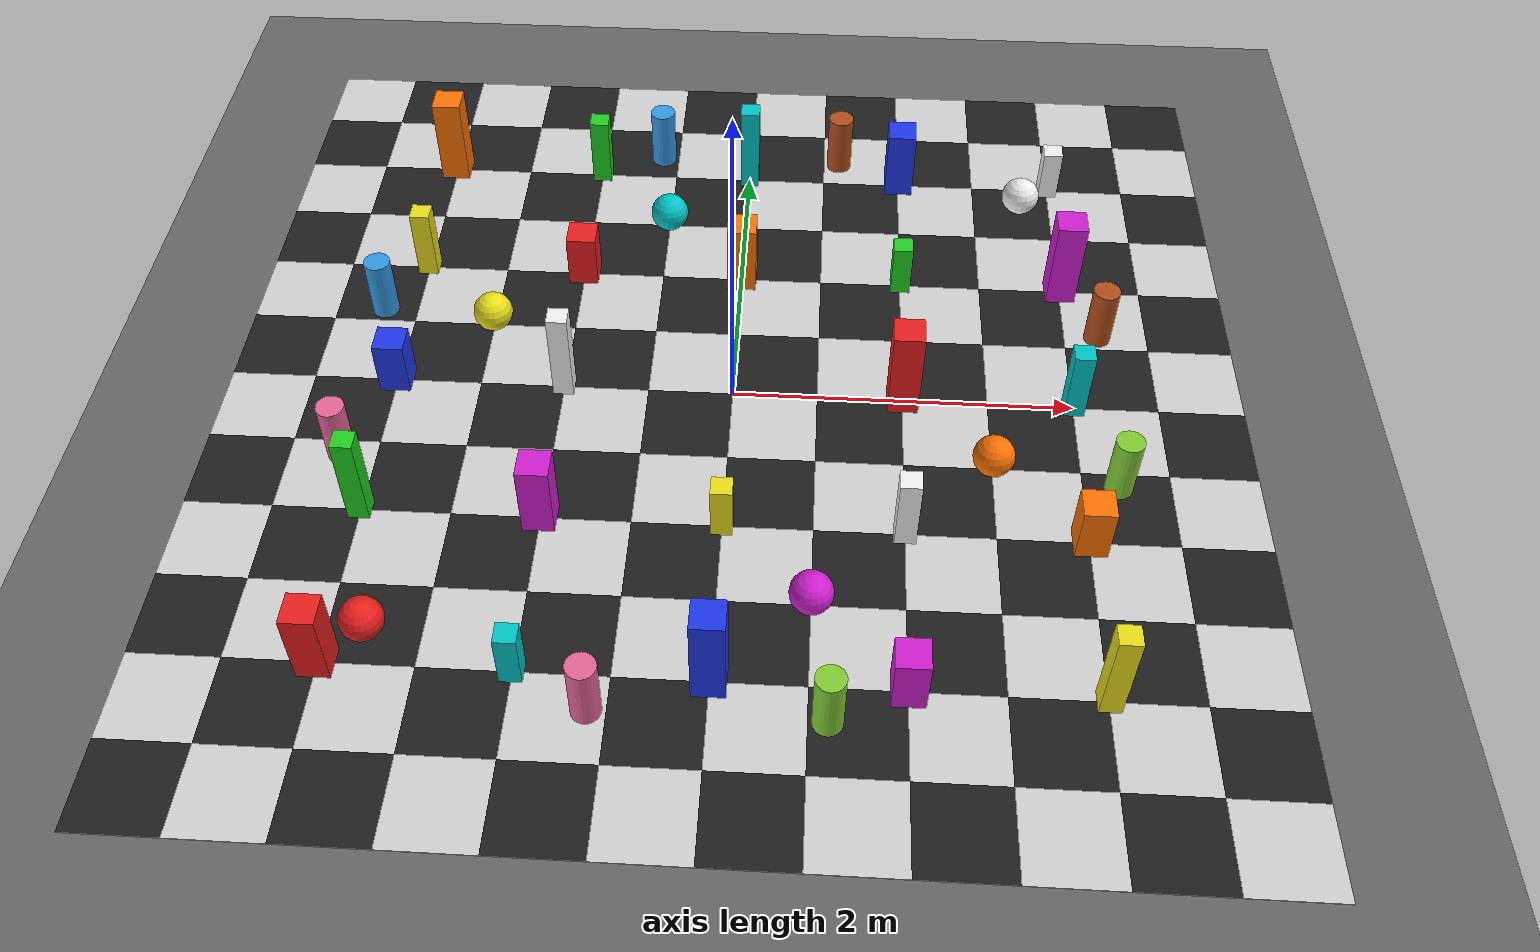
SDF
<?xml version="1.0" ?>
<!-- Dense VO world: 0.5 m checker tiles + colored landmarks. Default Modules 10-12. -->
<sdf version="1.6">
  <world name="vo_track">
    <physics name="1ms" type="ignored">
      <max_step_size>0.001</max_step_size>
      <real_time_factor>1.0</real_time_factor>
    </physics>
    <plugin filename="gz-sim-physics-system" name="gz::sim::systems::Physics"/>
    <plugin filename="gz-sim-user-commands-system" name="gz::sim::systems::UserCommands"/>
    <plugin filename="gz-sim-scene-broadcaster-system" name="gz::sim::systems::SceneBroadcaster"/>
    <plugin filename="gz-sim-contact-system" name="gz::sim::systems::Contact"/>
    <plugin filename="gz-sim-imu-system" name="gz::sim::systems::Imu"/>
    <plugin filename="gz-sim-sensors-system" name="gz::sim::systems::Sensors">
      <render_engine>ogre2</render_engine>
    </plugin>
    <light type="directional" name="sun">
      <cast_shadows>true</cast_shadows>
      <pose>0 0 10 0 0 0</pose>
      <diffuse>0.8 0.8 0.8 1</diffuse>
      <specular>0.2 0.2 0.2 1</specular>
      <direction>-0.5 0.1 -0.9</direction>
    </light>
    <model name="ground_plane">
      <static>true</static>
      <link name="link">
        <collision name="collision"><geometry><plane><normal>0 0 1</normal><size>100 100</size></plane></geometry></collision>
        <visual name="visual"><geometry><plane><normal>0 0 1</normal><size>100 100</size></plane></geometry>
          <material><ambient>0.4 0.4 0.4 1</ambient><diffuse>0.4 0.4 0.4 1</diffuse></material></visual>
      </link>
    </model>
    <model name="tile_0_0"><static>true</static><pose>-2.75 -2.75 0.002 0 0 0</pose><link name="link"><visual name="v"><geometry><box><size>0.5 0.5 0.004</size></box></geometry><material><ambient>0.12 0.12 0.12 1</ambient><diffuse>0.12 0.12 0.12 1</diffuse></material></visual></link></model>
    <model name="tile_0_1"><static>true</static><pose>-2.25 -2.75 0.002 0 0 0</pose><link name="link"><visual name="v"><geometry><box><size>0.5 0.5 0.004</size></box></geometry><material><ambient>0.82 0.82 0.82 1</ambient><diffuse>0.82 0.82 0.82 1</diffuse></material></visual></link></model>
    <model name="tile_0_2"><static>true</static><pose>-1.75 -2.75 0.002 0 0 0</pose><link name="link"><visual name="v"><geometry><box><size>0.5 0.5 0.004</size></box></geometry><material><ambient>0.12 0.12 0.12 1</ambient><diffuse>0.12 0.12 0.12 1</diffuse></material></visual></link></model>
    <model name="tile_0_3"><static>true</static><pose>-1.25 -2.75 0.002 0 0 0</pose><link name="link"><visual name="v"><geometry><box><size>0.5 0.5 0.004</size></box></geometry><material><ambient>0.82 0.82 0.82 1</ambient><diffuse>0.82 0.82 0.82 1</diffuse></material></visual></link></model>
    <model name="tile_0_4"><static>true</static><pose>-0.75 -2.75 0.002 0 0 0</pose><link name="link"><visual name="v"><geometry><box><size>0.5 0.5 0.004</size></box></geometry><material><ambient>0.12 0.12 0.12 1</ambient><diffuse>0.12 0.12 0.12 1</diffuse></material></visual></link></model>
    <model name="tile_0_5"><static>true</static><pose>-0.25 -2.75 0.002 0 0 0</pose><link name="link"><visual name="v"><geometry><box><size>0.5 0.5 0.004</size></box></geometry><material><ambient>0.82 0.82 0.82 1</ambient><diffuse>0.82 0.82 0.82 1</diffuse></material></visual></link></model>
    <model name="tile_0_6"><static>true</static><pose>0.25 -2.75 0.002 0 0 0</pose><link name="link"><visual name="v"><geometry><box><size>0.5 0.5 0.004</size></box></geometry><material><ambient>0.12 0.12 0.12 1</ambient><diffuse>0.12 0.12 0.12 1</diffuse></material></visual></link></model>
    <model name="tile_0_7"><static>true</static><pose>0.75 -2.75 0.002 0 0 0</pose><link name="link"><visual name="v"><geometry><box><size>0.5 0.5 0.004</size></box></geometry><material><ambient>0.82 0.82 0.82 1</ambient><diffuse>0.82 0.82 0.82 1</diffuse></material></visual></link></model>
    <model name="tile_0_8"><static>true</static><pose>1.25 -2.75 0.002 0 0 0</pose><link name="link"><visual name="v"><geometry><box><size>0.5 0.5 0.004</size></box></geometry><material><ambient>0.12 0.12 0.12 1</ambient><diffuse>0.12 0.12 0.12 1</diffuse></material></visual></link></model>
    <model name="tile_0_9"><static>true</static><pose>1.75 -2.75 0.002 0 0 0</pose><link name="link"><visual name="v"><geometry><box><size>0.5 0.5 0.004</size></box></geometry><material><ambient>0.82 0.82 0.82 1</ambient><diffuse>0.82 0.82 0.82 1</diffuse></material></visual></link></model>
    <model name="tile_0_10"><static>true</static><pose>2.25 -2.75 0.002 0 0 0</pose><link name="link"><visual name="v"><geometry><box><size>0.5 0.5 0.004</size></box></geometry><material><ambient>0.12 0.12 0.12 1</ambient><diffuse>0.12 0.12 0.12 1</diffuse></material></visual></link></model>
    <model name="tile_0_11"><static>true</static><pose>2.75 -2.75 0.002 0 0 0</pose><link name="link"><visual name="v"><geometry><box><size>0.5 0.5 0.004</size></box></geometry><material><ambient>0.82 0.82 0.82 1</ambient><diffuse>0.82 0.82 0.82 1</diffuse></material></visual></link></model>
    <model name="tile_1_0"><static>true</static><pose>-2.75 -2.25 0.002 0 0 0</pose><link name="link"><visual name="v"><geometry><box><size>0.5 0.5 0.004</size></box></geometry><material><ambient>0.82 0.82 0.82 1</ambient><diffuse>0.82 0.82 0.82 1</diffuse></material></visual></link></model>
    <model name="tile_1_1"><static>true</static><pose>-2.25 -2.25 0.002 0 0 0</pose><link name="link"><visual name="v"><geometry><box><size>0.5 0.5 0.004</size></box></geometry><material><ambient>0.12 0.12 0.12 1</ambient><diffuse>0.12 0.12 0.12 1</diffuse></material></visual></link></model>
    <model name="tile_1_2"><static>true</static><pose>-1.75 -2.25 0.002 0 0 0</pose><link name="link"><visual name="v"><geometry><box><size>0.5 0.5 0.004</size></box></geometry><material><ambient>0.82 0.82 0.82 1</ambient><diffuse>0.82 0.82 0.82 1</diffuse></material></visual></link></model>
    <model name="tile_1_3"><static>true</static><pose>-1.25 -2.25 0.002 0 0 0</pose><link name="link"><visual name="v"><geometry><box><size>0.5 0.5 0.004</size></box></geometry><material><ambient>0.12 0.12 0.12 1</ambient><diffuse>0.12 0.12 0.12 1</diffuse></material></visual></link></model>
    <model name="tile_1_4"><static>true</static><pose>-0.75 -2.25 0.002 0 0 0</pose><link name="link"><visual name="v"><geometry><box><size>0.5 0.5 0.004</size></box></geometry><material><ambient>0.82 0.82 0.82 1</ambient><diffuse>0.82 0.82 0.82 1</diffuse></material></visual></link></model>
    <model name="tile_1_5"><static>true</static><pose>-0.25 -2.25 0.002 0 0 0</pose><link name="link"><visual name="v"><geometry><box><size>0.5 0.5 0.004</size></box></geometry><material><ambient>0.12 0.12 0.12 1</ambient><diffuse>0.12 0.12 0.12 1</diffuse></material></visual></link></model>
    <model name="tile_1_6"><static>true</static><pose>0.25 -2.25 0.002 0 0 0</pose><link name="link"><visual name="v"><geometry><box><size>0.5 0.5 0.004</size></box></geometry><material><ambient>0.82 0.82 0.82 1</ambient><diffuse>0.82 0.82 0.82 1</diffuse></material></visual></link></model>
    <model name="tile_1_7"><static>true</static><pose>0.75 -2.25 0.002 0 0 0</pose><link name="link"><visual name="v"><geometry><box><size>0.5 0.5 0.004</size></box></geometry><material><ambient>0.12 0.12 0.12 1</ambient><diffuse>0.12 0.12 0.12 1</diffuse></material></visual></link></model>
    <model name="tile_1_8"><static>true</static><pose>1.25 -2.25 0.002 0 0 0</pose><link name="link"><visual name="v"><geometry><box><size>0.5 0.5 0.004</size></box></geometry><material><ambient>0.82 0.82 0.82 1</ambient><diffuse>0.82 0.82 0.82 1</diffuse></material></visual></link></model>
    <model name="tile_1_9"><static>true</static><pose>1.75 -2.25 0.002 0 0 0</pose><link name="link"><visual name="v"><geometry><box><size>0.5 0.5 0.004</size></box></geometry><material><ambient>0.12 0.12 0.12 1</ambient><diffuse>0.12 0.12 0.12 1</diffuse></material></visual></link></model>
    <model name="tile_1_10"><static>true</static><pose>2.25 -2.25 0.002 0 0 0</pose><link name="link"><visual name="v"><geometry><box><size>0.5 0.5 0.004</size></box></geometry><material><ambient>0.82 0.82 0.82 1</ambient><diffuse>0.82 0.82 0.82 1</diffuse></material></visual></link></model>
    <model name="tile_1_11"><static>true</static><pose>2.75 -2.25 0.002 0 0 0</pose><link name="link"><visual name="v"><geometry><box><size>0.5 0.5 0.004</size></box></geometry><material><ambient>0.12 0.12 0.12 1</ambient><diffuse>0.12 0.12 0.12 1</diffuse></material></visual></link></model>
    <model name="tile_2_0"><static>true</static><pose>-2.75 -1.75 0.002 0 0 0</pose><link name="link"><visual name="v"><geometry><box><size>0.5 0.5 0.004</size></box></geometry><material><ambient>0.12 0.12 0.12 1</ambient><diffuse>0.12 0.12 0.12 1</diffuse></material></visual></link></model>
    <model name="tile_2_1"><static>true</static><pose>-2.25 -1.75 0.002 0 0 0</pose><link name="link"><visual name="v"><geometry><box><size>0.5 0.5 0.004</size></box></geometry><material><ambient>0.82 0.82 0.82 1</ambient><diffuse>0.82 0.82 0.82 1</diffuse></material></visual></link></model>
    <model name="tile_2_2"><static>true</static><pose>-1.75 -1.75 0.002 0 0 0</pose><link name="link"><visual name="v"><geometry><box><size>0.5 0.5 0.004</size></box></geometry><material><ambient>0.12 0.12 0.12 1</ambient><diffuse>0.12 0.12 0.12 1</diffuse></material></visual></link></model>
    <model name="tile_2_3"><static>true</static><pose>-1.25 -1.75 0.002 0 0 0</pose><link name="link"><visual name="v"><geometry><box><size>0.5 0.5 0.004</size></box></geometry><material><ambient>0.82 0.82 0.82 1</ambient><diffuse>0.82 0.82 0.82 1</diffuse></material></visual></link></model>
    <model name="tile_2_4"><static>true</static><pose>-0.75 -1.75 0.002 0 0 0</pose><link name="link"><visual name="v"><geometry><box><size>0.5 0.5 0.004</size></box></geometry><material><ambient>0.12 0.12 0.12 1</ambient><diffuse>0.12 0.12 0.12 1</diffuse></material></visual></link></model>
    <model name="tile_2_5"><static>true</static><pose>-0.25 -1.75 0.002 0 0 0</pose><link name="link"><visual name="v"><geometry><box><size>0.5 0.5 0.004</size></box></geometry><material><ambient>0.82 0.82 0.82 1</ambient><diffuse>0.82 0.82 0.82 1</diffuse></material></visual></link></model>
    <model name="tile_2_6"><static>true</static><pose>0.25 -1.75 0.002 0 0 0</pose><link name="link"><visual name="v"><geometry><box><size>0.5 0.5 0.004</size></box></geometry><material><ambient>0.12 0.12 0.12 1</ambient><diffuse>0.12 0.12 0.12 1</diffuse></material></visual></link></model>
    <model name="tile_2_7"><static>true</static><pose>0.75 -1.75 0.002 0 0 0</pose><link name="link"><visual name="v"><geometry><box><size>0.5 0.5 0.004</size></box></geometry><material><ambient>0.82 0.82 0.82 1</ambient><diffuse>0.82 0.82 0.82 1</diffuse></material></visual></link></model>
    <model name="tile_2_8"><static>true</static><pose>1.25 -1.75 0.002 0 0 0</pose><link name="link"><visual name="v"><geometry><box><size>0.5 0.5 0.004</size></box></geometry><material><ambient>0.12 0.12 0.12 1</ambient><diffuse>0.12 0.12 0.12 1</diffuse></material></visual></link></model>
    <model name="tile_2_9"><static>true</static><pose>1.75 -1.75 0.002 0 0 0</pose><link name="link"><visual name="v"><geometry><box><size>0.5 0.5 0.004</size></box></geometry><material><ambient>0.82 0.82 0.82 1</ambient><diffuse>0.82 0.82 0.82 1</diffuse></material></visual></link></model>
    <model name="tile_2_10"><static>true</static><pose>2.25 -1.75 0.002 0 0 0</pose><link name="link"><visual name="v"><geometry><box><size>0.5 0.5 0.004</size></box></geometry><material><ambient>0.12 0.12 0.12 1</ambient><diffuse>0.12 0.12 0.12 1</diffuse></material></visual></link></model>
    <model name="tile_2_11"><static>true</static><pose>2.75 -1.75 0.002 0 0 0</pose><link name="link"><visual name="v"><geometry><box><size>0.5 0.5 0.004</size></box></geometry><material><ambient>0.82 0.82 0.82 1</ambient><diffuse>0.82 0.82 0.82 1</diffuse></material></visual></link></model>
    <model name="tile_3_0"><static>true</static><pose>-2.75 -1.25 0.002 0 0 0</pose><link name="link"><visual name="v"><geometry><box><size>0.5 0.5 0.004</size></box></geometry><material><ambient>0.82 0.82 0.82 1</ambient><diffuse>0.82 0.82 0.82 1</diffuse></material></visual></link></model>
    <model name="tile_3_1"><static>true</static><pose>-2.25 -1.25 0.002 0 0 0</pose><link name="link"><visual name="v"><geometry><box><size>0.5 0.5 0.004</size></box></geometry><material><ambient>0.12 0.12 0.12 1</ambient><diffuse>0.12 0.12 0.12 1</diffuse></material></visual></link></model>
    <model name="tile_3_2"><static>true</static><pose>-1.75 -1.25 0.002 0 0 0</pose><link name="link"><visual name="v"><geometry><box><size>0.5 0.5 0.004</size></box></geometry><material><ambient>0.82 0.82 0.82 1</ambient><diffuse>0.82 0.82 0.82 1</diffuse></material></visual></link></model>
    <model name="tile_3_3"><static>true</static><pose>-1.25 -1.25 0.002 0 0 0</pose><link name="link"><visual name="v"><geometry><box><size>0.5 0.5 0.004</size></box></geometry><material><ambient>0.12 0.12 0.12 1</ambient><diffuse>0.12 0.12 0.12 1</diffuse></material></visual></link></model>
    <model name="tile_3_4"><static>true</static><pose>-0.75 -1.25 0.002 0 0 0</pose><link name="link"><visual name="v"><geometry><box><size>0.5 0.5 0.004</size></box></geometry><material><ambient>0.82 0.82 0.82 1</ambient><diffuse>0.82 0.82 0.82 1</diffuse></material></visual></link></model>
    <model name="tile_3_5"><static>true</static><pose>-0.25 -1.25 0.002 0 0 0</pose><link name="link"><visual name="v"><geometry><box><size>0.5 0.5 0.004</size></box></geometry><material><ambient>0.12 0.12 0.12 1</ambient><diffuse>0.12 0.12 0.12 1</diffuse></material></visual></link></model>
    <model name="tile_3_6"><static>true</static><pose>0.25 -1.25 0.002 0 0 0</pose><link name="link"><visual name="v"><geometry><box><size>0.5 0.5 0.004</size></box></geometry><material><ambient>0.82 0.82 0.82 1</ambient><diffuse>0.82 0.82 0.82 1</diffuse></material></visual></link></model>
    <model name="tile_3_7"><static>true</static><pose>0.75 -1.25 0.002 0 0 0</pose><link name="link"><visual name="v"><geometry><box><size>0.5 0.5 0.004</size></box></geometry><material><ambient>0.12 0.12 0.12 1</ambient><diffuse>0.12 0.12 0.12 1</diffuse></material></visual></link></model>
    <model name="tile_3_8"><static>true</static><pose>1.25 -1.25 0.002 0 0 0</pose><link name="link"><visual name="v"><geometry><box><size>0.5 0.5 0.004</size></box></geometry><material><ambient>0.82 0.82 0.82 1</ambient><diffuse>0.82 0.82 0.82 1</diffuse></material></visual></link></model>
    <model name="tile_3_9"><static>true</static><pose>1.75 -1.25 0.002 0 0 0</pose><link name="link"><visual name="v"><geometry><box><size>0.5 0.5 0.004</size></box></geometry><material><ambient>0.12 0.12 0.12 1</ambient><diffuse>0.12 0.12 0.12 1</diffuse></material></visual></link></model>
    <model name="tile_3_10"><static>true</static><pose>2.25 -1.25 0.002 0 0 0</pose><link name="link"><visual name="v"><geometry><box><size>0.5 0.5 0.004</size></box></geometry><material><ambient>0.82 0.82 0.82 1</ambient><diffuse>0.82 0.82 0.82 1</diffuse></material></visual></link></model>
    <model name="tile_3_11"><static>true</static><pose>2.75 -1.25 0.002 0 0 0</pose><link name="link"><visual name="v"><geometry><box><size>0.5 0.5 0.004</size></box></geometry><material><ambient>0.12 0.12 0.12 1</ambient><diffuse>0.12 0.12 0.12 1</diffuse></material></visual></link></model>
    <model name="tile_4_0"><static>true</static><pose>-2.75 -0.75 0.002 0 0 0</pose><link name="link"><visual name="v"><geometry><box><size>0.5 0.5 0.004</size></box></geometry><material><ambient>0.12 0.12 0.12 1</ambient><diffuse>0.12 0.12 0.12 1</diffuse></material></visual></link></model>
    <model name="tile_4_1"><static>true</static><pose>-2.25 -0.75 0.002 0 0 0</pose><link name="link"><visual name="v"><geometry><box><size>0.5 0.5 0.004</size></box></geometry><material><ambient>0.82 0.82 0.82 1</ambient><diffuse>0.82 0.82 0.82 1</diffuse></material></visual></link></model>
    <model name="tile_4_2"><static>true</static><pose>-1.75 -0.75 0.002 0 0 0</pose><link name="link"><visual name="v"><geometry><box><size>0.5 0.5 0.004</size></box></geometry><material><ambient>0.12 0.12 0.12 1</ambient><diffuse>0.12 0.12 0.12 1</diffuse></material></visual></link></model>
    <model name="tile_4_3"><static>true</static><pose>-1.25 -0.75 0.002 0 0 0</pose><link name="link"><visual name="v"><geometry><box><size>0.5 0.5 0.004</size></box></geometry><material><ambient>0.82 0.82 0.82 1</ambient><diffuse>0.82 0.82 0.82 1</diffuse></material></visual></link></model>
    <model name="tile_4_4"><static>true</static><pose>-0.75 -0.75 0.002 0 0 0</pose><link name="link"><visual name="v"><geometry><box><size>0.5 0.5 0.004</size></box></geometry><material><ambient>0.12 0.12 0.12 1</ambient><diffuse>0.12 0.12 0.12 1</diffuse></material></visual></link></model>
    <model name="tile_4_5"><static>true</static><pose>-0.25 -0.75 0.002 0 0 0</pose><link name="link"><visual name="v"><geometry><box><size>0.5 0.5 0.004</size></box></geometry><material><ambient>0.82 0.82 0.82 1</ambient><diffuse>0.82 0.82 0.82 1</diffuse></material></visual></link></model>
    <model name="tile_4_6"><static>true</static><pose>0.25 -0.75 0.002 0 0 0</pose><link name="link"><visual name="v"><geometry><box><size>0.5 0.5 0.004</size></box></geometry><material><ambient>0.12 0.12 0.12 1</ambient><diffuse>0.12 0.12 0.12 1</diffuse></material></visual></link></model>
    <model name="tile_4_7"><static>true</static><pose>0.75 -0.75 0.002 0 0 0</pose><link name="link"><visual name="v"><geometry><box><size>0.5 0.5 0.004</size></box></geometry><material><ambient>0.82 0.82 0.82 1</ambient><diffuse>0.82 0.82 0.82 1</diffuse></material></visual></link></model>
    <model name="tile_4_8"><static>true</static><pose>1.25 -0.75 0.002 0 0 0</pose><link name="link"><visual name="v"><geometry><box><size>0.5 0.5 0.004</size></box></geometry><material><ambient>0.12 0.12 0.12 1</ambient><diffuse>0.12 0.12 0.12 1</diffuse></material></visual></link></model>
    <model name="tile_4_9"><static>true</static><pose>1.75 -0.75 0.002 0 0 0</pose><link name="link"><visual name="v"><geometry><box><size>0.5 0.5 0.004</size></box></geometry><material><ambient>0.82 0.82 0.82 1</ambient><diffuse>0.82 0.82 0.82 1</diffuse></material></visual></link></model>
    <model name="tile_4_10"><static>true</static><pose>2.25 -0.75 0.002 0 0 0</pose><link name="link"><visual name="v"><geometry><box><size>0.5 0.5 0.004</size></box></geometry><material><ambient>0.12 0.12 0.12 1</ambient><diffuse>0.12 0.12 0.12 1</diffuse></material></visual></link></model>
    <model name="tile_4_11"><static>true</static><pose>2.75 -0.75 0.002 0 0 0</pose><link name="link"><visual name="v"><geometry><box><size>0.5 0.5 0.004</size></box></geometry><material><ambient>0.82 0.82 0.82 1</ambient><diffuse>0.82 0.82 0.82 1</diffuse></material></visual></link></model>
    <model name="tile_5_0"><static>true</static><pose>-2.75 -0.25 0.002 0 0 0</pose><link name="link"><visual name="v"><geometry><box><size>0.5 0.5 0.004</size></box></geometry><material><ambient>0.82 0.82 0.82 1</ambient><diffuse>0.82 0.82 0.82 1</diffuse></material></visual></link></model>
    <model name="tile_5_1"><static>true</static><pose>-2.25 -0.25 0.002 0 0 0</pose><link name="link"><visual name="v"><geometry><box><size>0.5 0.5 0.004</size></box></geometry><material><ambient>0.12 0.12 0.12 1</ambient><diffuse>0.12 0.12 0.12 1</diffuse></material></visual></link></model>
    <model name="tile_5_2"><static>true</static><pose>-1.75 -0.25 0.002 0 0 0</pose><link name="link"><visual name="v"><geometry><box><size>0.5 0.5 0.004</size></box></geometry><material><ambient>0.82 0.82 0.82 1</ambient><diffuse>0.82 0.82 0.82 1</diffuse></material></visual></link></model>
    <model name="tile_5_3"><static>true</static><pose>-1.25 -0.25 0.002 0 0 0</pose><link name="link"><visual name="v"><geometry><box><size>0.5 0.5 0.004</size></box></geometry><material><ambient>0.12 0.12 0.12 1</ambient><diffuse>0.12 0.12 0.12 1</diffuse></material></visual></link></model>
    <model name="tile_5_4"><static>true</static><pose>-0.75 -0.25 0.002 0 0 0</pose><link name="link"><visual name="v"><geometry><box><size>0.5 0.5 0.004</size></box></geometry><material><ambient>0.82 0.82 0.82 1</ambient><diffuse>0.82 0.82 0.82 1</diffuse></material></visual></link></model>
    <model name="tile_5_5"><static>true</static><pose>-0.25 -0.25 0.002 0 0 0</pose><link name="link"><visual name="v"><geometry><box><size>0.5 0.5 0.004</size></box></geometry><material><ambient>0.12 0.12 0.12 1</ambient><diffuse>0.12 0.12 0.12 1</diffuse></material></visual></link></model>
    <model name="tile_5_6"><static>true</static><pose>0.25 -0.25 0.002 0 0 0</pose><link name="link"><visual name="v"><geometry><box><size>0.5 0.5 0.004</size></box></geometry><material><ambient>0.82 0.82 0.82 1</ambient><diffuse>0.82 0.82 0.82 1</diffuse></material></visual></link></model>
    <model name="tile_5_7"><static>true</static><pose>0.75 -0.25 0.002 0 0 0</pose><link name="link"><visual name="v"><geometry><box><size>0.5 0.5 0.004</size></box></geometry><material><ambient>0.12 0.12 0.12 1</ambient><diffuse>0.12 0.12 0.12 1</diffuse></material></visual></link></model>
    <model name="tile_5_8"><static>true</static><pose>1.25 -0.25 0.002 0 0 0</pose><link name="link"><visual name="v"><geometry><box><size>0.5 0.5 0.004</size></box></geometry><material><ambient>0.82 0.82 0.82 1</ambient><diffuse>0.82 0.82 0.82 1</diffuse></material></visual></link></model>
    <model name="tile_5_9"><static>true</static><pose>1.75 -0.25 0.002 0 0 0</pose><link name="link"><visual name="v"><geometry><box><size>0.5 0.5 0.004</size></box></geometry><material><ambient>0.12 0.12 0.12 1</ambient><diffuse>0.12 0.12 0.12 1</diffuse></material></visual></link></model>
    <model name="tile_5_10"><static>true</static><pose>2.25 -0.25 0.002 0 0 0</pose><link name="link"><visual name="v"><geometry><box><size>0.5 0.5 0.004</size></box></geometry><material><ambient>0.82 0.82 0.82 1</ambient><diffuse>0.82 0.82 0.82 1</diffuse></material></visual></link></model>
    <model name="tile_5_11"><static>true</static><pose>2.75 -0.25 0.002 0 0 0</pose><link name="link"><visual name="v"><geometry><box><size>0.5 0.5 0.004</size></box></geometry><material><ambient>0.12 0.12 0.12 1</ambient><diffuse>0.12 0.12 0.12 1</diffuse></material></visual></link></model>
    <model name="tile_6_0"><static>true</static><pose>-2.75 0.25 0.002 0 0 0</pose><link name="link"><visual name="v"><geometry><box><size>0.5 0.5 0.004</size></box></geometry><material><ambient>0.12 0.12 0.12 1</ambient><diffuse>0.12 0.12 0.12 1</diffuse></material></visual></link></model>
    <model name="tile_6_1"><static>true</static><pose>-2.25 0.25 0.002 0 0 0</pose><link name="link"><visual name="v"><geometry><box><size>0.5 0.5 0.004</size></box></geometry><material><ambient>0.82 0.82 0.82 1</ambient><diffuse>0.82 0.82 0.82 1</diffuse></material></visual></link></model>
    <model name="tile_6_2"><static>true</static><pose>-1.75 0.25 0.002 0 0 0</pose><link name="link"><visual name="v"><geometry><box><size>0.5 0.5 0.004</size></box></geometry><material><ambient>0.12 0.12 0.12 1</ambient><diffuse>0.12 0.12 0.12 1</diffuse></material></visual></link></model>
    <model name="tile_6_3"><static>true</static><pose>-1.25 0.25 0.002 0 0 0</pose><link name="link"><visual name="v"><geometry><box><size>0.5 0.5 0.004</size></box></geometry><material><ambient>0.82 0.82 0.82 1</ambient><diffuse>0.82 0.82 0.82 1</diffuse></material></visual></link></model>
    <model name="tile_6_4"><static>true</static><pose>-0.75 0.25 0.002 0 0 0</pose><link name="link"><visual name="v"><geometry><box><size>0.5 0.5 0.004</size></box></geometry><material><ambient>0.12 0.12 0.12 1</ambient><diffuse>0.12 0.12 0.12 1</diffuse></material></visual></link></model>
    <model name="tile_6_5"><static>true</static><pose>-0.25 0.25 0.002 0 0 0</pose><link name="link"><visual name="v"><geometry><box><size>0.5 0.5 0.004</size></box></geometry><material><ambient>0.82 0.82 0.82 1</ambient><diffuse>0.82 0.82 0.82 1</diffuse></material></visual></link></model>
    <model name="tile_6_6"><static>true</static><pose>0.25 0.25 0.002 0 0 0</pose><link name="link"><visual name="v"><geometry><box><size>0.5 0.5 0.004</size></box></geometry><material><ambient>0.12 0.12 0.12 1</ambient><diffuse>0.12 0.12 0.12 1</diffuse></material></visual></link></model>
    <model name="tile_6_7"><static>true</static><pose>0.75 0.25 0.002 0 0 0</pose><link name="link"><visual name="v"><geometry><box><size>0.5 0.5 0.004</size></box></geometry><material><ambient>0.82 0.82 0.82 1</ambient><diffuse>0.82 0.82 0.82 1</diffuse></material></visual></link></model>
    <model name="tile_6_8"><static>true</static><pose>1.25 0.25 0.002 0 0 0</pose><link name="link"><visual name="v"><geometry><box><size>0.5 0.5 0.004</size></box></geometry><material><ambient>0.12 0.12 0.12 1</ambient><diffuse>0.12 0.12 0.12 1</diffuse></material></visual></link></model>
    <model name="tile_6_9"><static>true</static><pose>1.75 0.25 0.002 0 0 0</pose><link name="link"><visual name="v"><geometry><box><size>0.5 0.5 0.004</size></box></geometry><material><ambient>0.82 0.82 0.82 1</ambient><diffuse>0.82 0.82 0.82 1</diffuse></material></visual></link></model>
    <model name="tile_6_10"><static>true</static><pose>2.25 0.25 0.002 0 0 0</pose><link name="link"><visual name="v"><geometry><box><size>0.5 0.5 0.004</size></box></geometry><material><ambient>0.12 0.12 0.12 1</ambient><diffuse>0.12 0.12 0.12 1</diffuse></material></visual></link></model>
    <model name="tile_6_11"><static>true</static><pose>2.75 0.25 0.002 0 0 0</pose><link name="link"><visual name="v"><geometry><box><size>0.5 0.5 0.004</size></box></geometry><material><ambient>0.82 0.82 0.82 1</ambient><diffuse>0.82 0.82 0.82 1</diffuse></material></visual></link></model>
    <model name="tile_7_0"><static>true</static><pose>-2.75 0.75 0.002 0 0 0</pose><link name="link"><visual name="v"><geometry><box><size>0.5 0.5 0.004</size></box></geometry><material><ambient>0.82 0.82 0.82 1</ambient><diffuse>0.82 0.82 0.82 1</diffuse></material></visual></link></model>
    <model name="tile_7_1"><static>true</static><pose>-2.25 0.75 0.002 0 0 0</pose><link name="link"><visual name="v"><geometry><box><size>0.5 0.5 0.004</size></box></geometry><material><ambient>0.12 0.12 0.12 1</ambient><diffuse>0.12 0.12 0.12 1</diffuse></material></visual></link></model>
    <model name="tile_7_2"><static>true</static><pose>-1.75 0.75 0.002 0 0 0</pose><link name="link"><visual name="v"><geometry><box><size>0.5 0.5 0.004</size></box></geometry><material><ambient>0.82 0.82 0.82 1</ambient><diffuse>0.82 0.82 0.82 1</diffuse></material></visual></link></model>
    <model name="tile_7_3"><static>true</static><pose>-1.25 0.75 0.002 0 0 0</pose><link name="link"><visual name="v"><geometry><box><size>0.5 0.5 0.004</size></box></geometry><material><ambient>0.12 0.12 0.12 1</ambient><diffuse>0.12 0.12 0.12 1</diffuse></material></visual></link></model>
    <model name="tile_7_4"><static>true</static><pose>-0.75 0.75 0.002 0 0 0</pose><link name="link"><visual name="v"><geometry><box><size>0.5 0.5 0.004</size></box></geometry><material><ambient>0.82 0.82 0.82 1</ambient><diffuse>0.82 0.82 0.82 1</diffuse></material></visual></link></model>
    <model name="tile_7_5"><static>true</static><pose>-0.25 0.75 0.002 0 0 0</pose><link name="link"><visual name="v"><geometry><box><size>0.5 0.5 0.004</size></box></geometry><material><ambient>0.12 0.12 0.12 1</ambient><diffuse>0.12 0.12 0.12 1</diffuse></material></visual></link></model>
    <model name="tile_7_6"><static>true</static><pose>0.25 0.75 0.002 0 0 0</pose><link name="link"><visual name="v"><geometry><box><size>0.5 0.5 0.004</size></box></geometry><material><ambient>0.82 0.82 0.82 1</ambient><diffuse>0.82 0.82 0.82 1</diffuse></material></visual></link></model>
    <model name="tile_7_7"><static>true</static><pose>0.75 0.75 0.002 0 0 0</pose><link name="link"><visual name="v"><geometry><box><size>0.5 0.5 0.004</size></box></geometry><material><ambient>0.12 0.12 0.12 1</ambient><diffuse>0.12 0.12 0.12 1</diffuse></material></visual></link></model>
    <model name="tile_7_8"><static>true</static><pose>1.25 0.75 0.002 0 0 0</pose><link name="link"><visual name="v"><geometry><box><size>0.5 0.5 0.004</size></box></geometry><material><ambient>0.82 0.82 0.82 1</ambient><diffuse>0.82 0.82 0.82 1</diffuse></material></visual></link></model>
    <model name="tile_7_9"><static>true</static><pose>1.75 0.75 0.002 0 0 0</pose><link name="link"><visual name="v"><geometry><box><size>0.5 0.5 0.004</size></box></geometry><material><ambient>0.12 0.12 0.12 1</ambient><diffuse>0.12 0.12 0.12 1</diffuse></material></visual></link></model>
    <model name="tile_7_10"><static>true</static><pose>2.25 0.75 0.002 0 0 0</pose><link name="link"><visual name="v"><geometry><box><size>0.5 0.5 0.004</size></box></geometry><material><ambient>0.82 0.82 0.82 1</ambient><diffuse>0.82 0.82 0.82 1</diffuse></material></visual></link></model>
    <model name="tile_7_11"><static>true</static><pose>2.75 0.75 0.002 0 0 0</pose><link name="link"><visual name="v"><geometry><box><size>0.5 0.5 0.004</size></box></geometry><material><ambient>0.12 0.12 0.12 1</ambient><diffuse>0.12 0.12 0.12 1</diffuse></material></visual></link></model>
    <model name="tile_8_0"><static>true</static><pose>-2.75 1.25 0.002 0 0 0</pose><link name="link"><visual name="v"><geometry><box><size>0.5 0.5 0.004</size></box></geometry><material><ambient>0.12 0.12 0.12 1</ambient><diffuse>0.12 0.12 0.12 1</diffuse></material></visual></link></model>
    <model name="tile_8_1"><static>true</static><pose>-2.25 1.25 0.002 0 0 0</pose><link name="link"><visual name="v"><geometry><box><size>0.5 0.5 0.004</size></box></geometry><material><ambient>0.82 0.82 0.82 1</ambient><diffuse>0.82 0.82 0.82 1</diffuse></material></visual></link></model>
    <model name="tile_8_2"><static>true</static><pose>-1.75 1.25 0.002 0 0 0</pose><link name="link"><visual name="v"><geometry><box><size>0.5 0.5 0.004</size></box></geometry><material><ambient>0.12 0.12 0.12 1</ambient><diffuse>0.12 0.12 0.12 1</diffuse></material></visual></link></model>
    <model name="tile_8_3"><static>true</static><pose>-1.25 1.25 0.002 0 0 0</pose><link name="link"><visual name="v"><geometry><box><size>0.5 0.5 0.004</size></box></geometry><material><ambient>0.82 0.82 0.82 1</ambient><diffuse>0.82 0.82 0.82 1</diffuse></material></visual></link></model>
    <model name="tile_8_4"><static>true</static><pose>-0.75 1.25 0.002 0 0 0</pose><link name="link"><visual name="v"><geometry><box><size>0.5 0.5 0.004</size></box></geometry><material><ambient>0.12 0.12 0.12 1</ambient><diffuse>0.12 0.12 0.12 1</diffuse></material></visual></link></model>
    <model name="tile_8_5"><static>true</static><pose>-0.25 1.25 0.002 0 0 0</pose><link name="link"><visual name="v"><geometry><box><size>0.5 0.5 0.004</size></box></geometry><material><ambient>0.82 0.82 0.82 1</ambient><diffuse>0.82 0.82 0.82 1</diffuse></material></visual></link></model>
    <model name="tile_8_6"><static>true</static><pose>0.25 1.25 0.002 0 0 0</pose><link name="link"><visual name="v"><geometry><box><size>0.5 0.5 0.004</size></box></geometry><material><ambient>0.12 0.12 0.12 1</ambient><diffuse>0.12 0.12 0.12 1</diffuse></material></visual></link></model>
    <model name="tile_8_7"><static>true</static><pose>0.75 1.25 0.002 0 0 0</pose><link name="link"><visual name="v"><geometry><box><size>0.5 0.5 0.004</size></box></geometry><material><ambient>0.82 0.82 0.82 1</ambient><diffuse>0.82 0.82 0.82 1</diffuse></material></visual></link></model>
    <model name="tile_8_8"><static>true</static><pose>1.25 1.25 0.002 0 0 0</pose><link name="link"><visual name="v"><geometry><box><size>0.5 0.5 0.004</size></box></geometry><material><ambient>0.12 0.12 0.12 1</ambient><diffuse>0.12 0.12 0.12 1</diffuse></material></visual></link></model>
    <model name="tile_8_9"><static>true</static><pose>1.75 1.25 0.002 0 0 0</pose><link name="link"><visual name="v"><geometry><box><size>0.5 0.5 0.004</size></box></geometry><material><ambient>0.82 0.82 0.82 1</ambient><diffuse>0.82 0.82 0.82 1</diffuse></material></visual></link></model>
    <model name="tile_8_10"><static>true</static><pose>2.25 1.25 0.002 0 0 0</pose><link name="link"><visual name="v"><geometry><box><size>0.5 0.5 0.004</size></box></geometry><material><ambient>0.12 0.12 0.12 1</ambient><diffuse>0.12 0.12 0.12 1</diffuse></material></visual></link></model>
    <model name="tile_8_11"><static>true</static><pose>2.75 1.25 0.002 0 0 0</pose><link name="link"><visual name="v"><geometry><box><size>0.5 0.5 0.004</size></box></geometry><material><ambient>0.82 0.82 0.82 1</ambient><diffuse>0.82 0.82 0.82 1</diffuse></material></visual></link></model>
    <model name="tile_9_0"><static>true</static><pose>-2.75 1.75 0.002 0 0 0</pose><link name="link"><visual name="v"><geometry><box><size>0.5 0.5 0.004</size></box></geometry><material><ambient>0.82 0.82 0.82 1</ambient><diffuse>0.82 0.82 0.82 1</diffuse></material></visual></link></model>
    <model name="tile_9_1"><static>true</static><pose>-2.25 1.75 0.002 0 0 0</pose><link name="link"><visual name="v"><geometry><box><size>0.5 0.5 0.004</size></box></geometry><material><ambient>0.12 0.12 0.12 1</ambient><diffuse>0.12 0.12 0.12 1</diffuse></material></visual></link></model>
    <model name="tile_9_2"><static>true</static><pose>-1.75 1.75 0.002 0 0 0</pose><link name="link"><visual name="v"><geometry><box><size>0.5 0.5 0.004</size></box></geometry><material><ambient>0.82 0.82 0.82 1</ambient><diffuse>0.82 0.82 0.82 1</diffuse></material></visual></link></model>
    <model name="tile_9_3"><static>true</static><pose>-1.25 1.75 0.002 0 0 0</pose><link name="link"><visual name="v"><geometry><box><size>0.5 0.5 0.004</size></box></geometry><material><ambient>0.12 0.12 0.12 1</ambient><diffuse>0.12 0.12 0.12 1</diffuse></material></visual></link></model>
    <model name="tile_9_4"><static>true</static><pose>-0.75 1.75 0.002 0 0 0</pose><link name="link"><visual name="v"><geometry><box><size>0.5 0.5 0.004</size></box></geometry><material><ambient>0.82 0.82 0.82 1</ambient><diffuse>0.82 0.82 0.82 1</diffuse></material></visual></link></model>
    <model name="tile_9_5"><static>true</static><pose>-0.25 1.75 0.002 0 0 0</pose><link name="link"><visual name="v"><geometry><box><size>0.5 0.5 0.004</size></box></geometry><material><ambient>0.12 0.12 0.12 1</ambient><diffuse>0.12 0.12 0.12 1</diffuse></material></visual></link></model>
    <model name="tile_9_6"><static>true</static><pose>0.25 1.75 0.002 0 0 0</pose><link name="link"><visual name="v"><geometry><box><size>0.5 0.5 0.004</size></box></geometry><material><ambient>0.82 0.82 0.82 1</ambient><diffuse>0.82 0.82 0.82 1</diffuse></material></visual></link></model>
    <model name="tile_9_7"><static>true</static><pose>0.75 1.75 0.002 0 0 0</pose><link name="link"><visual name="v"><geometry><box><size>0.5 0.5 0.004</size></box></geometry><material><ambient>0.12 0.12 0.12 1</ambient><diffuse>0.12 0.12 0.12 1</diffuse></material></visual></link></model>
    <model name="tile_9_8"><static>true</static><pose>1.25 1.75 0.002 0 0 0</pose><link name="link"><visual name="v"><geometry><box><size>0.5 0.5 0.004</size></box></geometry><material><ambient>0.82 0.82 0.82 1</ambient><diffuse>0.82 0.82 0.82 1</diffuse></material></visual></link></model>
    <model name="tile_9_9"><static>true</static><pose>1.75 1.75 0.002 0 0 0</pose><link name="link"><visual name="v"><geometry><box><size>0.5 0.5 0.004</size></box></geometry><material><ambient>0.12 0.12 0.12 1</ambient><diffuse>0.12 0.12 0.12 1</diffuse></material></visual></link></model>
    <model name="tile_9_10"><static>true</static><pose>2.25 1.75 0.002 0 0 0</pose><link name="link"><visual name="v"><geometry><box><size>0.5 0.5 0.004</size></box></geometry><material><ambient>0.82 0.82 0.82 1</ambient><diffuse>0.82 0.82 0.82 1</diffuse></material></visual></link></model>
    <model name="tile_9_11"><static>true</static><pose>2.75 1.75 0.002 0 0 0</pose><link name="link"><visual name="v"><geometry><box><size>0.5 0.5 0.004</size></box></geometry><material><ambient>0.12 0.12 0.12 1</ambient><diffuse>0.12 0.12 0.12 1</diffuse></material></visual></link></model>
    <model name="tile_10_0"><static>true</static><pose>-2.75 2.25 0.002 0 0 0</pose><link name="link"><visual name="v"><geometry><box><size>0.5 0.5 0.004</size></box></geometry><material><ambient>0.12 0.12 0.12 1</ambient><diffuse>0.12 0.12 0.12 1</diffuse></material></visual></link></model>
    <model name="tile_10_1"><static>true</static><pose>-2.25 2.25 0.002 0 0 0</pose><link name="link"><visual name="v"><geometry><box><size>0.5 0.5 0.004</size></box></geometry><material><ambient>0.82 0.82 0.82 1</ambient><diffuse>0.82 0.82 0.82 1</diffuse></material></visual></link></model>
    <model name="tile_10_2"><static>true</static><pose>-1.75 2.25 0.002 0 0 0</pose><link name="link"><visual name="v"><geometry><box><size>0.5 0.5 0.004</size></box></geometry><material><ambient>0.12 0.12 0.12 1</ambient><diffuse>0.12 0.12 0.12 1</diffuse></material></visual></link></model>
    <model name="tile_10_3"><static>true</static><pose>-1.25 2.25 0.002 0 0 0</pose><link name="link"><visual name="v"><geometry><box><size>0.5 0.5 0.004</size></box></geometry><material><ambient>0.82 0.82 0.82 1</ambient><diffuse>0.82 0.82 0.82 1</diffuse></material></visual></link></model>
    <model name="tile_10_4"><static>true</static><pose>-0.75 2.25 0.002 0 0 0</pose><link name="link"><visual name="v"><geometry><box><size>0.5 0.5 0.004</size></box></geometry><material><ambient>0.12 0.12 0.12 1</ambient><diffuse>0.12 0.12 0.12 1</diffuse></material></visual></link></model>
    <model name="tile_10_5"><static>true</static><pose>-0.25 2.25 0.002 0 0 0</pose><link name="link"><visual name="v"><geometry><box><size>0.5 0.5 0.004</size></box></geometry><material><ambient>0.82 0.82 0.82 1</ambient><diffuse>0.82 0.82 0.82 1</diffuse></material></visual></link></model>
    <model name="tile_10_6"><static>true</static><pose>0.25 2.25 0.002 0 0 0</pose><link name="link"><visual name="v"><geometry><box><size>0.5 0.5 0.004</size></box></geometry><material><ambient>0.12 0.12 0.12 1</ambient><diffuse>0.12 0.12 0.12 1</diffuse></material></visual></link></model>
    <model name="tile_10_7"><static>true</static><pose>0.75 2.25 0.002 0 0 0</pose><link name="link"><visual name="v"><geometry><box><size>0.5 0.5 0.004</size></box></geometry><material><ambient>0.82 0.82 0.82 1</ambient><diffuse>0.82 0.82 0.82 1</diffuse></material></visual></link></model>
    <model name="tile_10_8"><static>true</static><pose>1.25 2.25 0.002 0 0 0</pose><link name="link"><visual name="v"><geometry><box><size>0.5 0.5 0.004</size></box></geometry><material><ambient>0.12 0.12 0.12 1</ambient><diffuse>0.12 0.12 0.12 1</diffuse></material></visual></link></model>
    <model name="tile_10_9"><static>true</static><pose>1.75 2.25 0.002 0 0 0</pose><link name="link"><visual name="v"><geometry><box><size>0.5 0.5 0.004</size></box></geometry><material><ambient>0.82 0.82 0.82 1</ambient><diffuse>0.82 0.82 0.82 1</diffuse></material></visual></link></model>
    <model name="tile_10_10"><static>true</static><pose>2.25 2.25 0.002 0 0 0</pose><link name="link"><visual name="v"><geometry><box><size>0.5 0.5 0.004</size></box></geometry><material><ambient>0.12 0.12 0.12 1</ambient><diffuse>0.12 0.12 0.12 1</diffuse></material></visual></link></model>
    <model name="tile_10_11"><static>true</static><pose>2.75 2.25 0.002 0 0 0</pose><link name="link"><visual name="v"><geometry><box><size>0.5 0.5 0.004</size></box></geometry><material><ambient>0.82 0.82 0.82 1</ambient><diffuse>0.82 0.82 0.82 1</diffuse></material></visual></link></model>
    <model name="tile_11_0"><static>true</static><pose>-2.75 2.75 0.002 0 0 0</pose><link name="link"><visual name="v"><geometry><box><size>0.5 0.5 0.004</size></box></geometry><material><ambient>0.82 0.82 0.82 1</ambient><diffuse>0.82 0.82 0.82 1</diffuse></material></visual></link></model>
    <model name="tile_11_1"><static>true</static><pose>-2.25 2.75 0.002 0 0 0</pose><link name="link"><visual name="v"><geometry><box><size>0.5 0.5 0.004</size></box></geometry><material><ambient>0.12 0.12 0.12 1</ambient><diffuse>0.12 0.12 0.12 1</diffuse></material></visual></link></model>
    <model name="tile_11_2"><static>true</static><pose>-1.75 2.75 0.002 0 0 0</pose><link name="link"><visual name="v"><geometry><box><size>0.5 0.5 0.004</size></box></geometry><material><ambient>0.82 0.82 0.82 1</ambient><diffuse>0.82 0.82 0.82 1</diffuse></material></visual></link></model>
    <model name="tile_11_3"><static>true</static><pose>-1.25 2.75 0.002 0 0 0</pose><link name="link"><visual name="v"><geometry><box><size>0.5 0.5 0.004</size></box></geometry><material><ambient>0.12 0.12 0.12 1</ambient><diffuse>0.12 0.12 0.12 1</diffuse></material></visual></link></model>
    <model name="tile_11_4"><static>true</static><pose>-0.75 2.75 0.002 0 0 0</pose><link name="link"><visual name="v"><geometry><box><size>0.5 0.5 0.004</size></box></geometry><material><ambient>0.82 0.82 0.82 1</ambient><diffuse>0.82 0.82 0.82 1</diffuse></material></visual></link></model>
    <model name="tile_11_5"><static>true</static><pose>-0.25 2.75 0.002 0 0 0</pose><link name="link"><visual name="v"><geometry><box><size>0.5 0.5 0.004</size></box></geometry><material><ambient>0.12 0.12 0.12 1</ambient><diffuse>0.12 0.12 0.12 1</diffuse></material></visual></link></model>
    <model name="tile_11_6"><static>true</static><pose>0.25 2.75 0.002 0 0 0</pose><link name="link"><visual name="v"><geometry><box><size>0.5 0.5 0.004</size></box></geometry><material><ambient>0.82 0.82 0.82 1</ambient><diffuse>0.82 0.82 0.82 1</diffuse></material></visual></link></model>
    <model name="tile_11_7"><static>true</static><pose>0.75 2.75 0.002 0 0 0</pose><link name="link"><visual name="v"><geometry><box><size>0.5 0.5 0.004</size></box></geometry><material><ambient>0.12 0.12 0.12 1</ambient><diffuse>0.12 0.12 0.12 1</diffuse></material></visual></link></model>
    <model name="tile_11_8"><static>true</static><pose>1.25 2.75 0.002 0 0 0</pose><link name="link"><visual name="v"><geometry><box><size>0.5 0.5 0.004</size></box></geometry><material><ambient>0.82 0.82 0.82 1</ambient><diffuse>0.82 0.82 0.82 1</diffuse></material></visual></link></model>
    <model name="tile_11_9"><static>true</static><pose>1.75 2.75 0.002 0 0 0</pose><link name="link"><visual name="v"><geometry><box><size>0.5 0.5 0.004</size></box></geometry><material><ambient>0.12 0.12 0.12 1</ambient><diffuse>0.12 0.12 0.12 1</diffuse></material></visual></link></model>
    <model name="tile_11_10"><static>true</static><pose>2.25 2.75 0.002 0 0 0</pose><link name="link"><visual name="v"><geometry><box><size>0.5 0.5 0.004</size></box></geometry><material><ambient>0.82 0.82 0.82 1</ambient><diffuse>0.82 0.82 0.82 1</diffuse></material></visual></link></model>
    <model name="tile_11_11"><static>true</static><pose>2.75 2.75 0.002 0 0 0</pose><link name="link"><visual name="v"><geometry><box><size>0.5 0.5 0.004</size></box></geometry><material><ambient>0.12 0.12 0.12 1</ambient><diffuse>0.12 0.12 0.12 1</diffuse></material></visual></link></model>
    <model name="pillar_1_red"><static>true</static><pose>-2.0 -2.0 0.235 0 0 0</pose><link name="link"><visual name="v"><geometry><box><size>0.18 0.18 0.47</size></box></geometry><material><ambient>0.92 0.12 0.12 1</ambient><diffuse>0.92 0.12 0.12 1</diffuse></material></visual><collision name="c"><geometry><box><size>0.18 0.18 0.47</size></box></geometry></collision></link></model>
    <model name="pillar_2_green"><static>true</static><pose>-2.0 -1.0 0.295 0 0 0</pose><link name="link"><visual name="v"><geometry><box><size>0.12 0.12 0.59</size></box></geometry><material><ambient>0.12 0.82 0.12 1</ambient><diffuse>0.12 0.82 0.12 1</diffuse></material></visual><collision name="c"><geometry><box><size>0.12 0.12 0.59</size></box></geometry></collision></link></model>
    <model name="pillar_3_blue"><static>true</static><pose>-2.0 0.0 0.175 0 0 0</pose><link name="link"><visual name="v"><geometry><box><size>0.18 0.18 0.35</size></box></geometry><material><ambient>0.12 0.22 0.92 1</ambient><diffuse>0.12 0.22 0.92 1</diffuse></material></visual><collision name="c"><geometry><box><size>0.18 0.18 0.35</size></box></geometry></collision></link></model>
    <model name="pillar_4_yellow"><static>true</static><pose>-2.0 1.0 0.235 0 0 0</pose><link name="link"><visual name="v"><geometry><box><size>0.12 0.12 0.47</size></box></geometry><material><ambient>0.92 0.88 0.10 1</ambient><diffuse>0.92 0.88 0.10 1</diffuse></material></visual><collision name="c"><geometry><box><size>0.12 0.12 0.47</size></box></geometry></collision></link></model>
    <model name="pillar_5_orange"><static>true</static><pose>-2.0 2.0 0.295 0 0 0</pose><link name="link"><visual name="v"><geometry><box><size>0.18 0.18 0.59</size></box></geometry><material><ambient>1.0 0.45 0.0 1</ambient><diffuse>1.0 0.45 0.0 1</diffuse></material></visual><collision name="c"><geometry><box><size>0.18 0.18 0.59</size></box></geometry></collision></link></model>
    <model name="pillar_6_cyan"><static>true</static><pose>-1.0 -2.0 0.175 0 0 0</pose><link name="link"><visual name="v"><geometry><box><size>0.12 0.12 0.35</size></box></geometry><material><ambient>0.0 0.78 0.78 1</ambient><diffuse>0.0 0.78 0.78 1</diffuse></material></visual><collision name="c"><geometry><box><size>0.12 0.12 0.35</size></box></geometry></collision></link></model>
    <model name="pillar_7_magenta"><static>true</static><pose>-1.0 -1.0 0.235 0 0 0</pose><link name="link"><visual name="v"><geometry><box><size>0.18 0.18 0.47</size></box></geometry><material><ambient>0.82 0.12 0.82 1</ambient><diffuse>0.82 0.12 0.82 1</diffuse></material></visual><collision name="c"><geometry><box><size>0.18 0.18 0.47</size></box></geometry></collision></link></model>
    <model name="pillar_8_white"><static>true</static><pose>-1.0 0.0 0.295 0 0 0</pose><link name="link"><visual name="v"><geometry><box><size>0.12 0.12 0.59</size></box></geometry><material><ambient>0.95 0.95 0.95 1</ambient><diffuse>0.95 0.95 0.95 1</diffuse></material></visual><collision name="c"><geometry><box><size>0.12 0.12 0.59</size></box></geometry></collision></link></model>
    <model name="pillar_9_red"><static>true</static><pose>-1.0 1.0 0.175 0 0 0</pose><link name="link"><visual name="v"><geometry><box><size>0.18 0.18 0.35</size></box></geometry><material><ambient>0.92 0.12 0.12 1</ambient><diffuse>0.92 0.12 0.12 1</diffuse></material></visual><collision name="c"><geometry><box><size>0.18 0.18 0.35</size></box></geometry></collision></link></model>
    <model name="pillar_10_green"><static>true</static><pose>-1.0 2.0 0.235 0 0 0</pose><link name="link"><visual name="v"><geometry><box><size>0.12 0.12 0.47</size></box></geometry><material><ambient>0.12 0.82 0.12 1</ambient><diffuse>0.12 0.82 0.12 1</diffuse></material></visual><collision name="c"><geometry><box><size>0.12 0.12 0.47</size></box></geometry></collision></link></model>
    <model name="pillar_11_blue"><static>true</static><pose>0.0 -2.0 0.295 0 0 0</pose><link name="link"><visual name="v"><geometry><box><size>0.18 0.18 0.59</size></box></geometry><material><ambient>0.12 0.22 0.92 1</ambient><diffuse>0.12 0.22 0.92 1</diffuse></material></visual><collision name="c"><geometry><box><size>0.18 0.18 0.59</size></box></geometry></collision></link></model>
    <model name="pillar_12_yellow"><static>true</static><pose>0.0 -1.0 0.175 0 0 0</pose><link name="link"><visual name="v"><geometry><box><size>0.12 0.12 0.35</size></box></geometry><material><ambient>0.92 0.88 0.10 1</ambient><diffuse>0.92 0.88 0.10 1</diffuse></material></visual><collision name="c"><geometry><box><size>0.12 0.12 0.35</size></box></geometry></collision></link></model>
    <model name="pillar_13_orange"><static>true</static><pose>0.0 1.0 0.235 0 0 0</pose><link name="link"><visual name="v"><geometry><box><size>0.18 0.18 0.47</size></box></geometry><material><ambient>1.0 0.45 0.0 1</ambient><diffuse>1.0 0.45 0.0 1</diffuse></material></visual><collision name="c"><geometry><box><size>0.18 0.18 0.47</size></box></geometry></collision></link></model>
    <model name="pillar_14_cyan"><static>true</static><pose>0.0 2.0 0.295 0 0 0</pose><link name="link"><visual name="v"><geometry><box><size>0.12 0.12 0.59</size></box></geometry><material><ambient>0.0 0.78 0.78 1</ambient><diffuse>0.0 0.78 0.78 1</diffuse></material></visual><collision name="c"><geometry><box><size>0.12 0.12 0.59</size></box></geometry></collision></link></model>
    <model name="pillar_15_magenta"><static>true</static><pose>1.0 -2.0 0.175 0 0 0</pose><link name="link"><visual name="v"><geometry><box><size>0.18 0.18 0.35</size></box></geometry><material><ambient>0.82 0.12 0.82 1</ambient><diffuse>0.82 0.12 0.82 1</diffuse></material></visual><collision name="c"><geometry><box><size>0.18 0.18 0.35</size></box></geometry></collision></link></model>
    <model name="pillar_16_white"><static>true</static><pose>1.0 -1.0 0.235 0 0 0</pose><link name="link"><visual name="v"><geometry><box><size>0.12 0.12 0.47</size></box></geometry><material><ambient>0.95 0.95 0.95 1</ambient><diffuse>0.95 0.95 0.95 1</diffuse></material></visual><collision name="c"><geometry><box><size>0.12 0.12 0.47</size></box></geometry></collision></link></model>
    <model name="pillar_17_red"><static>true</static><pose>1.0 0.0 0.295 0 0 0</pose><link name="link"><visual name="v"><geometry><box><size>0.18 0.18 0.59</size></box></geometry><material><ambient>0.92 0.12 0.12 1</ambient><diffuse>0.92 0.12 0.12 1</diffuse></material></visual><collision name="c"><geometry><box><size>0.18 0.18 0.59</size></box></geometry></collision></link></model>
    <model name="pillar_18_green"><static>true</static><pose>1.0 1.0 0.175 0 0 0</pose><link name="link"><visual name="v"><geometry><box><size>0.12 0.12 0.35</size></box></geometry><material><ambient>0.12 0.82 0.12 1</ambient><diffuse>0.12 0.82 0.12 1</diffuse></material></visual><collision name="c"><geometry><box><size>0.12 0.12 0.35</size></box></geometry></collision></link></model>
    <model name="pillar_19_blue"><static>true</static><pose>1.0 2.0 0.235 0 0 0</pose><link name="link"><visual name="v"><geometry><box><size>0.18 0.18 0.47</size></box></geometry><material><ambient>0.12 0.22 0.92 1</ambient><diffuse>0.12 0.22 0.92 1</diffuse></material></visual><collision name="c"><geometry><box><size>0.18 0.18 0.47</size></box></geometry></collision></link></model>
    <model name="pillar_20_yellow"><static>true</static><pose>2.0 -2.0 0.295 0 0 0</pose><link name="link"><visual name="v"><geometry><box><size>0.12 0.12 0.59</size></box></geometry><material><ambient>0.92 0.88 0.10 1</ambient><diffuse>0.92 0.88 0.10 1</diffuse></material></visual><collision name="c"><geometry><box><size>0.12 0.12 0.59</size></box></geometry></collision></link></model>
    <model name="pillar_21_orange"><static>true</static><pose>2.0 -1.0 0.175 0 0 0</pose><link name="link"><visual name="v"><geometry><box><size>0.18 0.18 0.35</size></box></geometry><material><ambient>1.0 0.45 0.0 1</ambient><diffuse>1.0 0.45 0.0 1</diffuse></material></visual><collision name="c"><geometry><box><size>0.18 0.18 0.35</size></box></geometry></collision></link></model>
    <model name="pillar_22_cyan"><static>true</static><pose>2.0 0.0 0.235 0 0 0</pose><link name="link"><visual name="v"><geometry><box><size>0.12 0.12 0.47</size></box></geometry><material><ambient>0.0 0.78 0.78 1</ambient><diffuse>0.0 0.78 0.78 1</diffuse></material></visual><collision name="c"><geometry><box><size>0.12 0.12 0.47</size></box></geometry></collision></link></model>
    <model name="pillar_23_magenta"><static>true</static><pose>2.0 1.0 0.295 0 0 0</pose><link name="link"><visual name="v"><geometry><box><size>0.18 0.18 0.59</size></box></geometry><material><ambient>0.82 0.12 0.82 1</ambient><diffuse>0.82 0.12 0.82 1</diffuse></material></visual><collision name="c"><geometry><box><size>0.18 0.18 0.59</size></box></geometry></collision></link></model>
    <model name="pillar_24_white"><static>true</static><pose>2.0 2.0 0.175 0 0 0</pose><link name="link"><visual name="v"><geometry><box><size>0.12 0.12 0.35</size></box></geometry><material><ambient>0.95 0.95 0.95 1</ambient><diffuse>0.95 0.95 0.95 1</diffuse></material></visual><collision name="c"><geometry><box><size>0.12 0.12 0.35</size></box></geometry></collision></link></model>
    <model name="cylinder_0"><static>true</static><pose>2.2 0.6 0.2 0 0 0</pose><link name="link"><visual name="v"><geometry><cylinder><radius>0.08</radius><length>0.4</length></cylinder></geometry><material><ambient>0.7 0.3 0.1 1</ambient><diffuse>0.7 0.3 0.1 1</diffuse></material></visual><collision name="c"><geometry><cylinder><radius>0.08</radius><length>0.4</length></cylinder></geometry></collision></link></model>
    <model name="cylinder_1"><static>true</static><pose>-2.2 0.6 0.2 0 0 0</pose><link name="link"><visual name="v"><geometry><cylinder><radius>0.08</radius><length>0.4</length></cylinder></geometry><material><ambient>0.2 0.6 0.9 1</ambient><diffuse>0.2 0.6 0.9 1</diffuse></material></visual><collision name="c"><geometry><cylinder><radius>0.08</radius><length>0.4</length></cylinder></geometry></collision></link></model>
    <model name="cylinder_2"><static>true</static><pose>2.2 -0.6 0.2 0 0 0</pose><link name="link"><visual name="v"><geometry><cylinder><radius>0.08</radius><length>0.4</length></cylinder></geometry><material><ambient>0.5 0.8 0.2 1</ambient><diffuse>0.5 0.8 0.2 1</diffuse></material></visual><collision name="c"><geometry><cylinder><radius>0.08</radius><length>0.4</length></cylinder></geometry></collision></link></model>
    <model name="cylinder_3"><static>true</static><pose>-2.2 -0.6 0.2 0 0 0</pose><link name="link"><visual name="v"><geometry><cylinder><radius>0.08</radius><length>0.4</length></cylinder></geometry><material><ambient>0.9 0.4 0.6 1</ambient><diffuse>0.9 0.4 0.6 1</diffuse></material></visual><collision name="c"><geometry><cylinder><radius>0.08</radius><length>0.4</length></cylinder></geometry></collision></link></model>
    <model name="cylinder_4"><static>true</static><pose>0.6 2.2 0.2 0 0 0</pose><link name="link"><visual name="v"><geometry><cylinder><radius>0.08</radius><length>0.4</length></cylinder></geometry><material><ambient>0.7 0.3 0.1 1</ambient><diffuse>0.7 0.3 0.1 1</diffuse></material></visual><collision name="c"><geometry><cylinder><radius>0.08</radius><length>0.4</length></cylinder></geometry></collision></link></model>
    <model name="cylinder_5"><static>true</static><pose>-0.6 2.2 0.2 0 0 0</pose><link name="link"><visual name="v"><geometry><cylinder><radius>0.08</radius><length>0.4</length></cylinder></geometry><material><ambient>0.2 0.6 0.9 1</ambient><diffuse>0.2 0.6 0.9 1</diffuse></material></visual><collision name="c"><geometry><cylinder><radius>0.08</radius><length>0.4</length></cylinder></geometry></collision></link></model>
    <model name="cylinder_6"><static>true</static><pose>0.6 -2.2 0.2 0 0 0</pose><link name="link"><visual name="v"><geometry><cylinder><radius>0.08</radius><length>0.4</length></cylinder></geometry><material><ambient>0.5 0.8 0.2 1</ambient><diffuse>0.5 0.8 0.2 1</diffuse></material></visual><collision name="c"><geometry><cylinder><radius>0.08</radius><length>0.4</length></cylinder></geometry></collision></link></model>
    <model name="cylinder_7"><static>true</static><pose>-0.6 -2.2 0.2 0 0 0</pose><link name="link"><visual name="v"><geometry><cylinder><radius>0.08</radius><length>0.4</length></cylinder></geometry><material><ambient>0.9 0.4 0.6 1</ambient><diffuse>0.9 0.4 0.6 1</diffuse></material></visual><collision name="c"><geometry><cylinder><radius>0.08</radius><length>0.4</length></cylinder></geometry></collision></link></model>
    <model name="sphere_0"><static>true</static><pose>-1.5 0.5 0.12 0 0 0</pose><link name="link"><visual name="v"><geometry><sphere><radius>0.12</radius></sphere></geometry><material><ambient>0.92 0.88 0.10 1</ambient><diffuse>0.92 0.88 0.10 1</diffuse></material></visual><collision name="c"><geometry><sphere><radius>0.12</radius></sphere></geometry></collision></link></model>
    <model name="sphere_1"><static>true</static><pose>1.5 -0.5 0.12 0 0 0</pose><link name="link"><visual name="v"><geometry><sphere><radius>0.12</radius></sphere></geometry><material><ambient>1.0 0.45 0.0 1</ambient><diffuse>1.0 0.45 0.0 1</diffuse></material></visual><collision name="c"><geometry><sphere><radius>0.12</radius></sphere></geometry></collision></link></model>
    <model name="sphere_2"><static>true</static><pose>-0.5 1.5 0.12 0 0 0</pose><link name="link"><visual name="v"><geometry><sphere><radius>0.12</radius></sphere></geometry><material><ambient>0.0 0.78 0.78 1</ambient><diffuse>0.0 0.78 0.78 1</diffuse></material></visual><collision name="c"><geometry><sphere><radius>0.12</radius></sphere></geometry></collision></link></model>
    <model name="sphere_3"><static>true</static><pose>0.5 -1.5 0.12 0 0 0</pose><link name="link"><visual name="v"><geometry><sphere><radius>0.12</radius></sphere></geometry><material><ambient>0.82 0.12 0.82 1</ambient><diffuse>0.82 0.12 0.82 1</diffuse></material></visual><collision name="c"><geometry><sphere><radius>0.12</radius></sphere></geometry></collision></link></model>
    <model name="sphere_4"><static>true</static><pose>1.8 1.8 0.12 0 0 0</pose><link name="link"><visual name="v"><geometry><sphere><radius>0.12</radius></sphere></geometry><material><ambient>0.95 0.95 0.95 1</ambient><diffuse>0.95 0.95 0.95 1</diffuse></material></visual><collision name="c"><geometry><sphere><radius>0.12</radius></sphere></geometry></collision></link></model>
    <model name="sphere_5"><static>true</static><pose>-1.8 -1.8 0.12 0 0 0</pose><link name="link"><visual name="v"><geometry><sphere><radius>0.12</radius></sphere></geometry><material><ambient>0.92 0.12 0.12 1</ambient><diffuse>0.92 0.12 0.12 1</diffuse></material></visual><collision name="c"><geometry><sphere><radius>0.12</radius></sphere></geometry></collision></link></model>
  </world>
</sdf>
